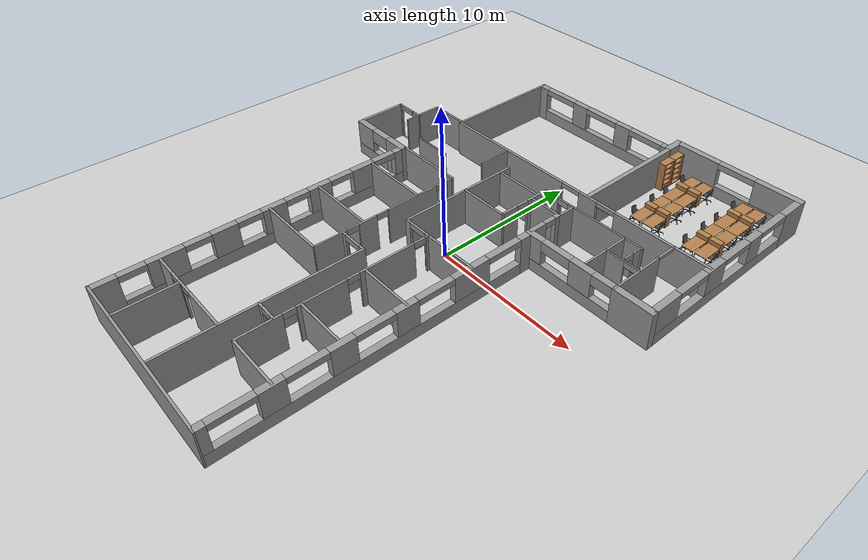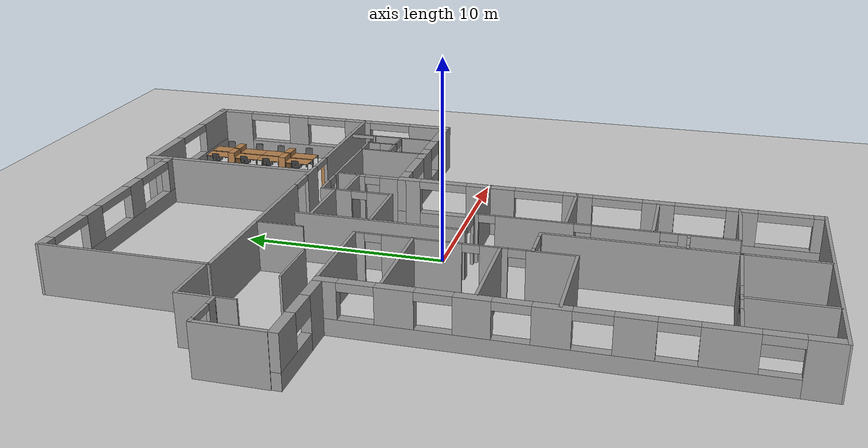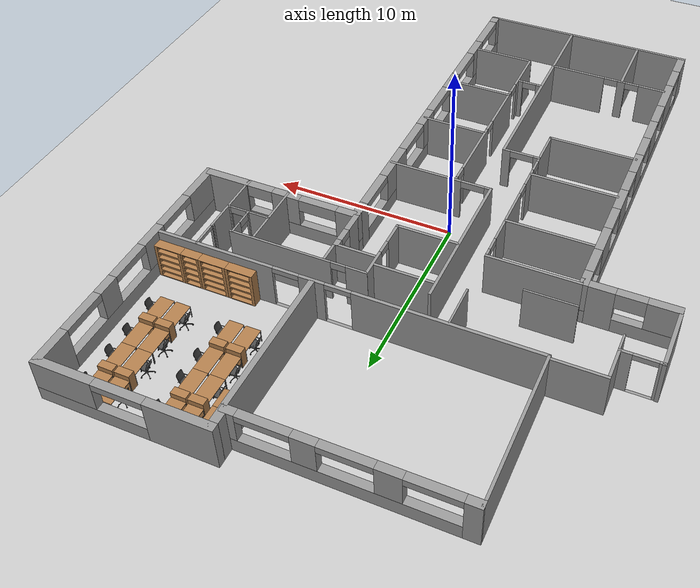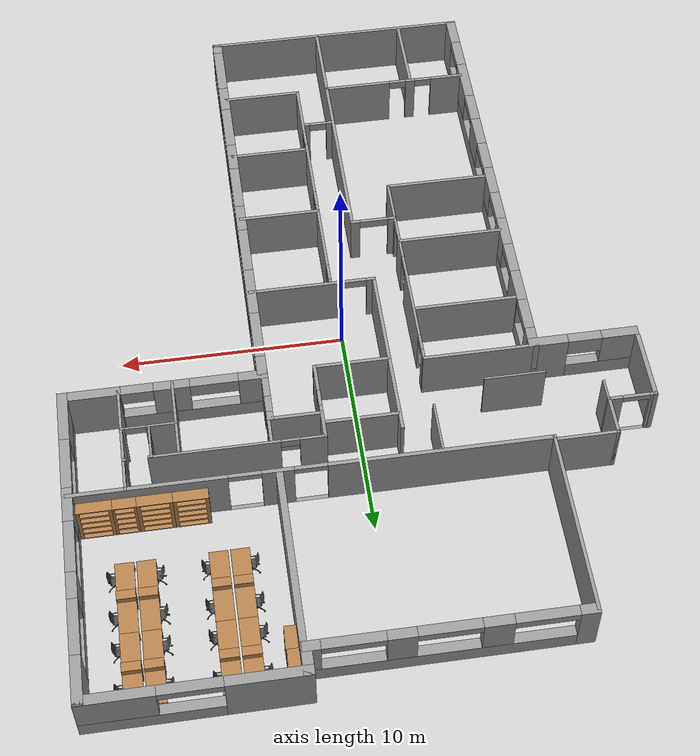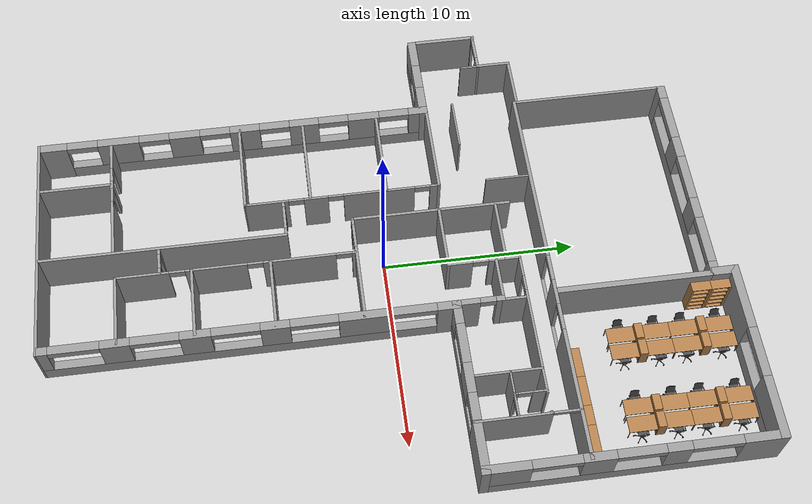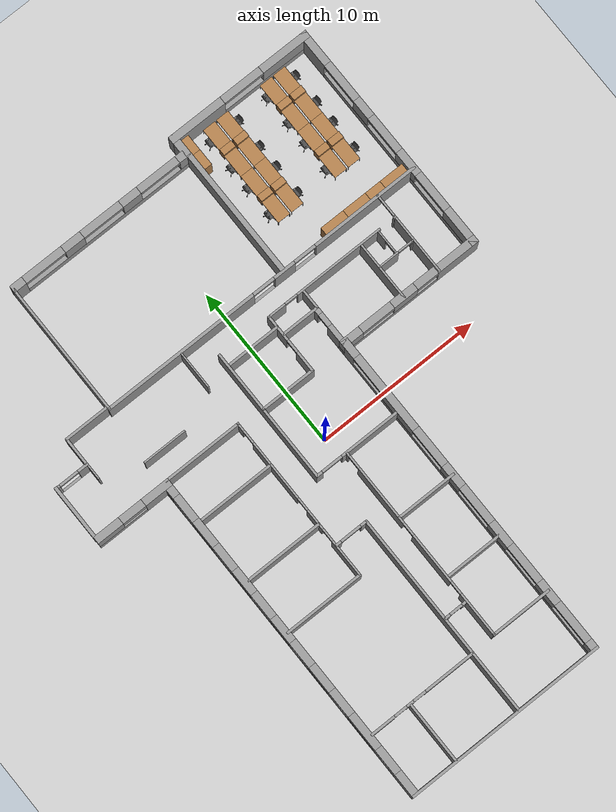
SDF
<?xml version="1.0" ?>
<sdf version="1.5">
  <world name="default">
    <!-- A global light source -->
    <include>
      <uri>model://sun</uri>
    </include>
    <!-- A ground plane -->
    <include>
      <uri>model://ground_plane</uri>
    </include>
    <!-- Centro Piaggio -->
    <include>
      <uri>model://CentroPiaggioReal</uri>
      <name>CentroPiaggio</name>
      <pose>0 0 0 0 0 0</pose>
    </include>
    <!-- Furniture-->
        <!-- LAB -->
        <include>
            <uri>model://real_table</uri>
            <pose>5.73 16.24 0 0 0 1.57</pose>
        </include>
        <include>
            <uri>model://dresser</uri>
            <pose>5.73 15.34 0.5 0 0 1.57</pose>
        </include>
        <include>
            <uri>model://real_table</uri>
            <pose>5.73 14.44 0 0 0 1.57</pose>
        </include>
        <include>
            <uri>model://real_table</uri>
            <pose>5.73 13.04 0 0 0 1.57</pose>
        </include>
        <include>
            <uri>model://dresser</uri>
            <pose>5.73 12.14 0.5 0 0 1.57</pose>
        </include>
        <include>
            <uri>model://real_table</uri>
            <pose>5.73 11.24 0 0 0 1.57</pose>
        </include>

        <include>
            <uri>model://real_table</uri>
            <pose>6.63 16.24 0 0 0 1.57</pose>
        </include>
        <include>
            <uri>model://dresser</uri>
            <pose>6.63 15.34 0.5 0 0 1.57</pose>
        </include>
        <include>
            <uri>model://real_table</uri>
            <pose>6.63 14.44 0 0 0 1.57</pose>
        </include>
        <include>
            <uri>model://real_table</uri>
            <pose>6.63 13.04 0 0 0 1.57</pose>
        </include>
        <include>
            <uri>model://dresser</uri>
            <pose>6.63 12.14 0.5 0 0 1.57</pose>
        </include>
        <include>
            <uri>model://real_table</uri>
            <pose>6.63 11.24 0 0 0 1.57</pose>
        </include>

        <include>
            <uri>model://real_table</uri>
            <pose>9.6 16.24 0 0 0 1.57</pose>
        </include>
        <include>
            <uri>model://dresser</uri>
            <pose>9.6 15.34 0.5 0 0 1.57</pose>
        </include>
        <include>
            <uri>model://real_table</uri>
            <pose>9.6 14.44 0 0 0 1.57</pose>
        </include>
        <include>
            <uri>model://real_table</uri>
            <pose>9.6 13.04 0 0 0 1.57</pose>
        </include>
        <include>
            <uri>model://dresser</uri>
            <pose>9.6 12.14 0.5 0 0 1.57</pose>
        </include>
        <include>
            <uri>model://real_table</uri>
            <pose>9.6 11.24 0 0 0 1.57</pose>
        </include>

        <include>
            <uri>model://real_table</uri>
            <pose>10.5 16.24 0 0 0 1.57</pose>
        </include>
        <include>
            <uri>model://dresser</uri>
            <pose>10.5 15.34 0.5 0 0 1.57</pose>
        </include>
        <include>
            <uri>model://real_table</uri>
            <pose>10.5 14.44 0 0 0 1.57</pose>
        </include>
        <include>
            <uri>model://real_table</uri>
            <pose>10.5 13.04 0 0 0 1.57</pose>
        </include>
        <include>
            <uri>model://dresser</uri>
            <pose>10.5 12.14 0.5 0 0 1.57</pose>
        </include>
        <include>
            <uri>model://real_table</uri>
            <pose>10.5 11.24 0 0 0 1.57</pose>
        </include>

        <include>
            <uri>model://office_chair</uri>
            <pose>5.15 16.2 0 0 0 1.57</pose>
        </include>
        <include>
            <uri>model://office_chair</uri>
            <pose>5.15 14.4 0 0 0 1.57</pose>
        </include>
        <include>
            <uri>model://office_chair</uri>
            <pose>5.15 13 0 0 0 1.57</pose>
        </include>
        <include>
            <uri>model://office_chair</uri>
            <pose>5.15 11.2 0 0 0 1.57</pose>
        </include>
        <include>
            <uri>model://office_chair</uri>
            <pose>7.2 16.2 0 0 0 -1.57</pose>
        </include>
        <include>
            <uri>model://office_chair</uri>
            <pose>7.2 14.4 0 0 0 -1.57</pose>
        </include>
        <include>
            <uri>model://office_chair</uri>
            <pose>7.2 13 0 0 0 -1.57</pose>
        </include>
        <include>
            <uri>model://office_chair</uri>
            <pose>7.2 11.2 0 0 0 -1.57</pose>
        </include>

        <include>
            <uri>model://office_chair</uri>
            <pose>9.02 16.2 0 0 0 1.57</pose>
        </include>
        <include>
            <uri>model://office_chair</uri>
            <pose>9.02 14.4 0 0 0 1.57</pose>
        </include>
        <include>
            <uri>model://office_chair</uri>
            <pose>9.02 13 0 0 0 1.57</pose>
        </include>
        <include>
            <uri>model://office_chair</uri>
            <pose>9.02 11.2 0 0 0 1.57</pose>
        </include>
        <include>
            <uri>model://office_chair</uri>
            <pose>11.07 16.2 0 0 0 -1.57</pose>
        </include>
        <include>
            <uri>model://office_chair</uri>
            <pose>11.07 14.4 0 0 0 -1.57</pose>
        </include>
        <include>
            <uri>model://office_chair</uri>
            <pose>11.07 13 0 0 0 -1.57</pose>
        </include>
        <include>
            <uri>model://office_chair</uri>
            <pose>11.07 11.2 0 0 0 -1.57</pose>
        </include>

        <include>
            <uri>model://bookshelf_1_5m</uri>
            <pose>11.5 8.48 0 0 0 3.14159</pose>
        </include>
        <include>
            <uri>model://bookshelf_1m</uri>
            <pose>10.25 8.48 0 0 0 3.14159</pose>
        </include>
        <include>
            <uri>model://bookshelf_1_5m</uri>
            <pose>9 8.48 0 0 0 3.14159</pose>
        </include>
        <include>
            <uri>model://bookshelf_1_5m</uri>
            <pose>7.5 8.48 0 0 0 3.14159</pose>
        </include>

        <include>
            <uri>model://bookshelf_1m</uri>
            <pose>4.17 16.5 0 0 0 1.57</pose>
        </include>
        <include>
            <uri>model://bookshelf_1m</uri>
            <pose>4.17 15.5 0 0 0 1.57</pose>
        </include>
  </world>
</sdf>

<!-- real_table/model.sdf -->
<sdf version="1.5">
  <model name="real_table">
    <static>true</static>
    <link name="link">
      <collision name="surface">
        <pose>0 0 0.7 0 0 0</pose>
        <geometry>
          <box>
            <size>1.4 0.8 0.03</size>
          </box>
        </geometry>
        <surface>
          <friction>
            <ode>
              <mu>0.6</mu>
              <mu2>0.6</mu2>
            </ode>
          </friction>
        </surface>
      </collision>
      <visual name="visual1">
        <pose>0 0 0.7 0 0 0</pose>
        <geometry>
          <box>
            <size>1.4 0.8 0.03</size>
          </box>
        </geometry>
        <material>
          <script>
            <uri>file://media/materials/scripts/gazebo.material</uri>
            <name>Gazebo/Wood</name>
          </script>
        </material>
      </visual>
      <collision name="front_left_leg">
        <pose>0.68 0.38 0.35 0 0 0</pose>
        <geometry>
          <cylinder>
            <radius>0.02</radius>
            <length>0.7</length>
          </cylinder>
        </geometry>
      </collision>
      <visual name="front_left_leg">
        <pose>0.68 0.38 0.35 0 0 0</pose>
        <geometry>
          <cylinder>
            <radius>0.02</radius>
            <length>0.7</length>
          </cylinder>
        </geometry>
        <material>
          <script>
            <uri>file://media/materials/scripts/gazebo.material</uri>
            <name>Gazebo/Grey</name>
          </script>
        </material>
      </visual>
      <collision name="front_right_leg">
        <pose>0.68 -0.38 0.35 0 0 0</pose>
        <geometry>
          <cylinder>
            <radius>0.02</radius>
            <length>0.7</length>
          </cylinder>
        </geometry>
      </collision>
      <visual name="front_right_leg">
        <pose>0.68 -0.38 0.35 0 0 0</pose>
        <geometry>
          <cylinder>
            <radius>0.02</radius>
            <length>0.7</length>
          </cylinder>
        </geometry>
        <material>
          <script>
            <uri>file://media/materials/scripts/gazebo.material</uri>
            <name>Gazebo/Grey</name>
          </script>
        </material>
      </visual>
      <collision name="back_right_leg">
        <pose>-0.68 -0.38 0.35 0 0 0</pose>
        <geometry>
          <cylinder>
            <radius>0.02</radius>
            <length>0.7</length>
          </cylinder>
        </geometry>
      </collision>
      <visual name="back_right_leg">
        <pose>-0.68 -0.38 0.35 0 0 0</pose>
        <geometry>
          <cylinder>
            <radius>0.02</radius>
            <length>0.7</length>
          </cylinder>
        </geometry>
        <material>
          <script>
            <uri>file://media/materials/scripts/gazebo.material</uri>
            <name>Gazebo/Grey</name>
          </script>
        </material>
      </visual>
      <collision name="back_left_leg">
        <pose>-0.68 0.38 0.35 0 0 0</pose>
        <geometry>
          <cylinder>
            <radius>0.02</radius>
            <length>0.7</length>
          </cylinder>
        </geometry>
      </collision>
      <visual name="back_left_leg">
        <pose>-0.68 0.38 0.35 0 0 0</pose>
        <geometry>
          <cylinder>
            <radius>0.02</radius>
            <length>0.7</length>
          </cylinder>
        </geometry>
        <material>
          <script>
            <uri>file://media/materials/scripts/gazebo.material</uri>
            <name>Gazebo/Grey</name>
          </script>
        </material>
      </visual>
    </link>
  </model>
</sdf>

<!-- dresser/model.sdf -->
<sdf version="1.5">
<model name="dresser">
  <pose>0 0 0.5 0 0 0</pose>
  <static>true</static>
    <link name="link">
      <inertial>
        <mass>1.0</mass>
        <inertia>
          <ixx>0.083</ixx>       <!-- for a box: ixx = 0.083 * mass * (y*y + z*z) -->
          <ixy>0.0</ixy>         <!-- for a box: ixy = 0 -->
          <ixz>0.0</ixz>         <!-- for a box: ixz = 0 -->
          <iyy>0.083</iyy>       <!-- for a box: iyy = 0.083 * mass * (x*x + z*z) -->
          <iyz>0.0</iyz>         <!-- for a box: iyz = 0 -->
          <izz>0.083</izz>       <!-- for a box: izz = 0.083 * mass * (x*x + y*y) -->
        </inertia>
      </inertial>
      <collision name="collision">
        <geometry>
          <box>
            <size>0.4 0.8 1</size>
          </box>
        </geometry>
      </collision>
      <visual name="visual">
        <geometry>
          <box>
            <size>0.4 0.8 1</size>
          </box>
        </geometry>
        <material>
          <script>
            <uri>file://media/materials/scripts/gazebo.material</uri>
            <name>Gazebo/Wood</name>
          </script>
        </material>
      </visual>
    </link>
  </model>
</sdf>

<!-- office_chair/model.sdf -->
<sdf version="1.5">
  <model name="office_chair">
    <static>true</static>
    <link name='defaultModel_0::custom_0'>
      <pose>0 0 0 0 0 0</pose>
      <gravity>1</gravity>
      <self_collide>0</self_collide>
      <kinematic>0</kinematic>
      <visual name='custom_0_visual'>
        <pose>0 0 0.474 1.57079 0 0</pose>
        <geometry>
          <mesh>
            <uri>model://office_chair/office_chair.dae</uri>
            <scale>0.001 0.001 0.001</scale>
          </mesh>
        </geometry>
        <material>
          <script>
            <uri>file://media/materials/scripts/gazebo.material</uri>
            <name>Gazebo/DarkGrey</name>
          </script>
        </material>
      </visual>
      <collision name='defaultModel_0::custom_0_collision'>
        <geometry>
          <mesh>
            <uri>model://office_chair/office_chair.dae</uri>
            <scale>0.001 0.001 0.001</scale>
          </mesh>
        </geometry>
        <pose>0 0 0.474 1.57079 0 0</pose>
      </collision>
    </link>
  </model>
</sdf>

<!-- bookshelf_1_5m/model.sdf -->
<sdf version="1.5">
  <model name="bookshelf_1_5m">
    <static>true</static>
    <link name='defaultModel_0::custom_0'>
      <pose>0 0 1 1.57 0 0</pose>
      <gravity>1</gravity>
      <self_collide>0</self_collide>
      <kinematic>0</kinematic>
      <visual name='custom_0_visual'>
        <pose>0 0 0 0 0 0</pose>
        <geometry>
          <mesh>
            <uri>/home/peppe/projects/irobot_ws/src/irobot_worlds/models/bookshelf_1_5m/scaffale.dae</uri>
            <scale>1.5 1 1</scale>
          </mesh>
        </geometry>
        <material>
          <script>
            <uri>file://media/materials/scripts/gazebo.material</uri>
            <name>Gazebo/Wood</name>
          </script>
        </material>
      </visual>
      <collision name='defaultModel_0::custom_0_collision'>
        <geometry>
          <mesh>
            <uri>/home/peppe/projects/irobot_ws/src/irobot_worlds/models/bookshelf_1_5m/scaffale.dae</uri>
            <scale>1.5 1 1</scale>
          </mesh>
        </geometry>
        <pose>0 0 0 0 0 0</pose>
      </collision>
    </link>
  </model>
</sdf>

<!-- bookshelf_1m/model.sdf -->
<sdf version="1.5">
  <model name="bookshelf_1m">
    <static>true</static>
    <link name='defaultModel_0::custom_0'>
      <pose>0 0 1 1.57 0 0</pose>
      <gravity>1</gravity>
      <self_collide>0</self_collide>
      <kinematic>0</kinematic>
      <visual name='custom_0_visual'>
        <pose>0 0 0 0 0 0</pose>
        <geometry>
          <mesh>
            <uri>/home/peppe/projects/irobot_ws/src/irobot_worlds/models/bookshelf_1m/scaffale.dae</uri>
          </mesh>
        </geometry>
        <material>
          <script>
            <uri>file://media/materials/scripts/gazebo.material</uri>
            <name>Gazebo/Wood</name>
          </script>
        </material>
      </visual>
      <collision name='defaultModel_0::custom_0_collision'>
        <geometry>
          <mesh>
            <uri>/home/peppe/projects/irobot_ws/src/irobot_worlds/models/bookshelf_1m/scaffale.dae</uri>
          </mesh>
        </geometry>
        <pose>0 0 0 0 0 0</pose>
      </collision>
    </link>
  </model>
</sdf>
